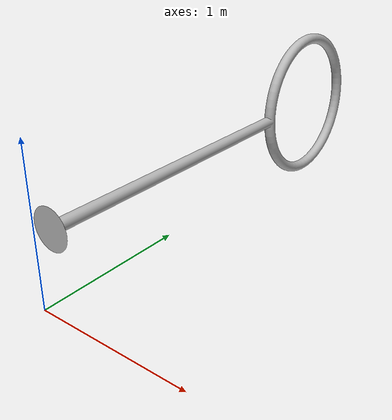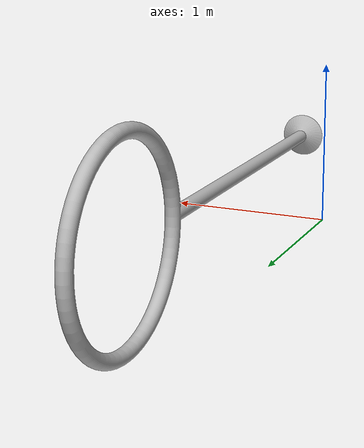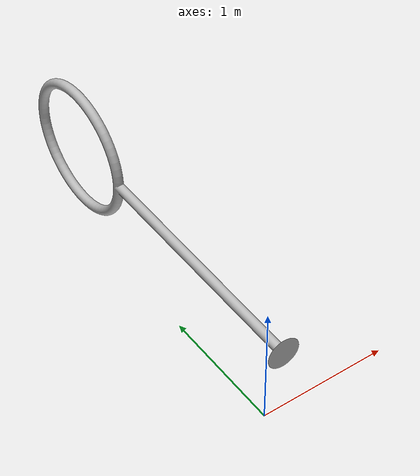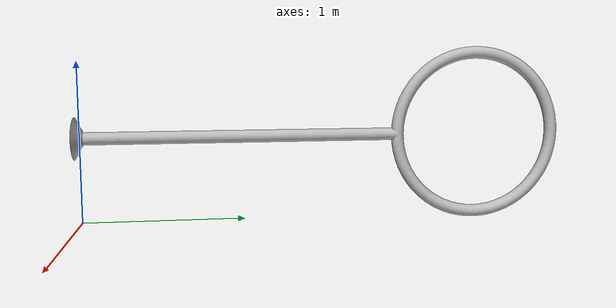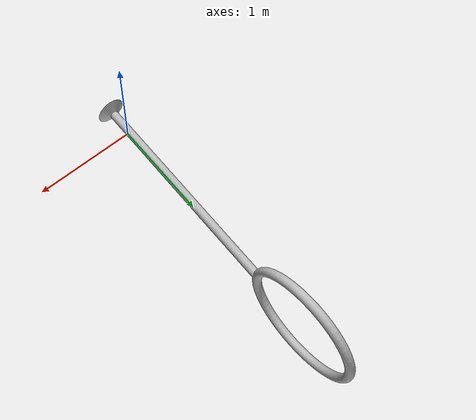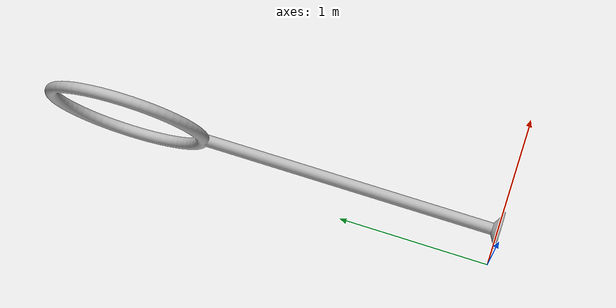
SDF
<?xml version='1.0'?>
<sdf version="1.5">
  <model name="hoop75">
    <pose>0 0 0 0 0 0</pose>
    <static>true</static>
    <link name="link">
     <collision name="collision">
        <geometry>
          <mesh>
		  <uri>model://hoop75/meshes/hoop75.STL</uri>
		  <scale>0.00254 0.00254 0.00254</scale>
	  </mesh>
	</geometry>
      </collision>
      <visual name="visual">
        <geometry>
          <mesh>
		  <uri>model://hoop75/meshes/hoop75.STL</uri>
		  <scale>0.00254 0.00254 0.00254</scale>
          </mesh>
        </geometry>
      </visual>
    </link>
  </model>
</sdf>
